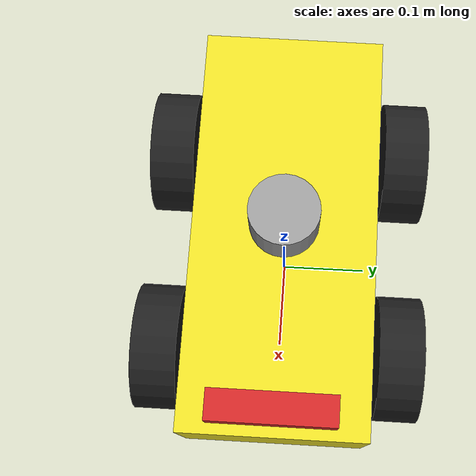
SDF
<?xml version="1.0"?>
<sdf version='1.7'>
  <model name='4WD_robot'>
    <link name="base_footprint"></link>

    <link name="base_link">
      <pose relative_to='base_footprint'>0 0 0.1195 0 0 0</pose>
      <visual name="base_link_of_robot">
        <pose>0 0 0 0 0 0</pose>
        <geometry>
          <box>
            <size>0.445 0.2 0.129</size>
          </box>
        </geometry>
        <material>
          <script>
            <name>Gazebo/Yellow</name>
            <uri>file://media/materials/scripts/gazebo.material</uri>
          </script>
        </material>
      </visual>
      <collision name="base_link_of_robot_collision">
        <pose>0 0 0 0 0 0</pose>
        <geometry>
          <box>
            <size>0.445 0.2 0.129</size>
          </box>
        </geometry>
      </collision>
      <inertial>
        <pose>0 0 0 0 0 0</pose>
        <mass>12</mass>
        <inertia>
          <ixx>0.0566</ixx>
          <ixy>0.0</ixy>
          <ixz>0.0</ixz>
          <iyy>0.2147</iyy>
          <iyz>0.0</iyz>
          <izz>0.238</izz>
        </inertia>
      </inertial>
    </link>
    <joint name="base_to_footprint" type="fixed">
      <parent>base_footprint</parent>
      <child>base_link</child>
      <pose relative_to='base_footprint'/>
    </joint>

    <link name="front_left_wheel_link">
      <pose relative_to='base_link'>0.120 0.1355 -0.04788 0 0 0</pose>
      <visual name="front_left_wheel_link_of_robot">
        <pose>0 0 0 1.5708 0 0</pose>
        <geometry>
          <cylinder>
            <radius>0.07162</radius>
            <length>0.05</length>
          </cylinder>
        </geometry>
        <material>
          <script>
            <name>Gazebo/Black</name>
            <uri>file://media/materials/scripts/gazebo.material</uri>
          </script>
        </material>
      </visual>
      <collision name="front_left_wheel_link_of_robot_collision">
        <pose>0 0 0 1.5708 0 0</pose>
        <geometry>
          <cylinder>
            <radius>0.07162</radius>
            <length>0.05</length>
          </cylinder>
        </geometry>
      </collision>
      <inertial>
        <pose>0 0 0 0 0 0</pose>
        <mass>0.5</mass>
        <inertia>
          <ixx>0.00103</ixx>
          <ixy>0.0</ixy>
          <ixz>0.0</ixz>
          <iyy>0.00103</iyy>
          <iyz>0.0</iyz>
          <izz>0.00103</izz>
        </inertia>
      </inertial>
    </link>
    <joint name="front_left_wheel_joint" type="revolute">
      <axis>
        <xyz>0 1 0</xyz>
        <limit>
          <lower>-1.79769e+308</lower>    <!--negative infinity-->
          <upper>1.79769e+308</upper>     <!--positive infinity-->
        </limit>
      </axis>
      <parent>base_link</parent>
      <child>front_left_wheel_link</child>
      <pose relative_to='front_left_wheel_link'/>
    </joint>

    <link name="front_right_wheel_link">
      <pose relative_to='base_link'>0.120 -0.1355 -0.04788 0 0 0</pose>
      <visual name="front_right_wheel_link_of_robot">
        <pose>0 0 0 1.5708 0 0</pose>
        <geometry>
          <cylinder>
            <radius>0.07162</radius>
            <length>0.05</length>
          </cylinder>
        </geometry>
        <material>
          <script>
            <name>Gazebo/Black</name>
            <uri>file://media/materials/scripts/gazebo.material</uri>
          </script>
        </material>
      </visual>
      <collision name="front_right_wheel_link_of_robot_collision">
        <pose>0 0 0 1.5708 0 0</pose>
        <geometry>
          <cylinder>
            <radius>0.07162</radius>
            <length>0.05</length>
          </cylinder>
        </geometry>
      </collision>
      <inertial>
        <pose>0 0 0 0 0 0</pose>
        <mass>0.5</mass>
        <inertia>
          <ixx>0.00103</ixx>
          <ixy>0.0</ixy>
          <ixz>0.0</ixz>
          <iyy>0.00103</iyy>
          <iyz>0.0</iyz>
          <izz>0.00103</izz>
        </inertia>
      </inertial>
    </link>
    <joint name="front_right_wheel_joint" type="revolute">
      <axis>
        <xyz>0 1 0</xyz>
        <limit>
          <lower>-1.79769e+308</lower>    <!--negative infinity-->
          <upper>1.79769e+308</upper>     <!--positive infinity-->
        </limit>
      </axis>
      <parent>base_link</parent>
      <child>front_right_wheel_link</child>
      <pose relative_to='front_right_wheel_link'/>
    </joint>

    <link name="rear_left_wheel_link">
      <pose relative_to='base_link'>-0.120 0.1355 -0.04788 0 0 0</pose>
      <visual name="rear_left_wheel_link_of_robot">
        <pose>0 0 0 1.5708 0 0</pose>
        <geometry>
          <cylinder>
            <radius>0.07162</radius>
            <length>0.05</length>
          </cylinder>
        </geometry>
        <material>
          <script>
            <name>Gazebo/Black</name>
            <uri>file://media/materials/scripts/gazebo.material</uri>
          </script>
        </material>
      </visual>
      <collision name="rear_left_wheel_link_of_robot_collision">
        <pose>0 0 0 1.5708 0 0</pose>
        <geometry>
          <cylinder>
            <radius>0.07162</radius>
            <length>0.05</length>
          </cylinder>
        </geometry>
      </collision>
      <inertial>
        <pose>0 0 0 0 0 0</pose>
        <mass>0.5</mass>
        <inertia>
          <ixx>0.00103</ixx>
          <ixy>0.0</ixy>
          <ixz>0.0</ixz>
          <iyy>0.00103</iyy>
          <iyz>0.0</iyz>
          <izz>0.00103</izz>
        </inertia>
      </inertial>
    </link>
    <joint name="rear_left_wheel_joint" type="revolute">
      <axis>
        <xyz>0 1 0</xyz>
        <limit>
          <lower>-1.79769e+308</lower>    <!--negative infinity-->
          <upper>1.79769e+308</upper>     <!--positive infinity-->
        </limit>
      </axis>
      <parent>base_link</parent>
      <child>rear_left_wheel_link</child>
      <pose relative_to='rear_left_wheel_link'/>
    </joint>

    <link name="rear_right_wheel_link">
      <pose relative_to='base_link'>-0.120 -0.1355 -0.04788 0 0 0</pose>
      <visual name="rear_right_wheel_link_of_robot">
        <pose>0 0 0 1.5708 0 0</pose>
        <geometry>
          <cylinder>
            <radius>0.07162</radius>
            <length>0.05</length>
          </cylinder>
        </geometry>
        <material>
          <script>
            <name>Gazebo/Black</name>
            <uri>file://media/materials/scripts/gazebo.material</uri>
          </script>
        </material>
      </visual>
      <collision name="rear_right_wheel_link_of_robot_collision">
        <pose>0 0 0 1.5708 0 0</pose>
        <geometry>
          <cylinder>
            <radius>0.07162</radius>
            <length>0.05</length>
          </cylinder>
        </geometry>
      </collision>
      <inertial>
        <pose>0 0 0 0 0 0</pose>
        <mass>0.5</mass>
        <inertia>
          <ixx>0.00103</ixx>
          <ixy>0.0</ixy>
          <ixz>0.0</ixz>
          <iyy>0.00103</iyy>
          <iyz>0.0</iyz>
          <izz>0.00103</izz>
        </inertia>
      </inertial>
    </link>
    <joint name="rear_right_wheel_joint" type="revolute">
      <axis>
        <xyz>0 1 0</xyz>
        <limit>
          <lower>-1.79769e+308</lower>    <!--negative infinity-->
          <upper>1.79769e+308</upper>     <!--positive infinity-->
        </limit>
      </axis>
      <parent>base_link</parent>
      <child>rear_right_wheel_link</child>
      <pose relative_to='rear_right_wheel_link'/>
    </joint>

    <plugin name="diff_drive" filename="libgazebo_ros_diff_drive.so">
      <num_wheel_pairs>2</num_wheel_pairs>
      <left_joint>front_left_wheel_joint</left_joint>
      <right_joint>front_right_wheel_joint</right_joint>
      <left_joint>rear_left_wheel_joint</left_joint>
      <right_joint>rear_right_wheel_joint</right_joint>
      <wheel_separation>0.271</wheel_separation>
      <wheel_separation>0.271</wheel_separation>
      <wheel_diameter>0.14324</wheel_diameter>
      <wheel_diameter>0.14324</wheel_diameter>
      <update_rate>50</update_rate>
      <max_wheel_acceleration>1.0</max_wheel_acceleration>
      <robot_base_frame>base_footprint</robot_base_frame>
      <publish_odom>true</publish_odom>
      <publish_odom_tf>true</publish_odom_tf>
      <publish_wheel_tf>true</publish_wheel_tf>
      <odometry_frame>odom</odometry_frame>
    </plugin>

    <frame name="laser_scan" attached_to='base_link'>
      <pose>0 0 0.129 0 0 0</pose>
    </frame>

    <link name="laser">
      <pose relative_to='laser_scan'/>
      <visual name="laser_link_of_robot">
        <pose>0 0 -0.025 0 0 0</pose>
        <geometry>
          <cylinder>
            <radius>0.0375</radius>
            <length>0.05</length>
          </cylinder>
        </geometry>
        <material>
          <script>
            <name>Gazebo/Grey</name>
            <uri>file://media/materials/scripts/gazebo.material</uri>
          </script>
        </material>
      </visual>
      <collision name="laser_link_of_robot_collision">
        <pose>0 0 -0.025 0 0 0</pose>
        <geometry>
          <cylinder>
            <radius>0.0375</radius>
            <length>0.05</length>
          </cylinder>
        </geometry>
      </collision>
      <inertial>
        <pose>0 0 0 0 0 0</pose>
        <mass>0.1</mass>
        <inertia>
          <ixx>0.000056</ixx>
          <ixy>0.0</ixy>
          <ixz>0.0</ixz>
          <iyy>0.000056</iyy>
          <iyz>0.0</iyz>
          <izz>0.000056</izz>
        </inertia>
      </inertial>
      <sensor type="ray" name="laser_lidar">
        <always_on>1</always_on>
        <update_rate>15</update_rate>
        <visualize>true</visualize>
        <ray>
          <scan>
            <horizontal>
              <samples>540</samples>
              <resolution>1</resolution>
              <min_angle>-1.5708</min_angle>
              <max_angle>1.5708</max_angle>
            </horizontal>
          </scan>
          <range>
            <min>0.08</min>
            <max>10.0</max>
            <resolution>0.01</resolution>
          </range>
        </ray>
        <plugin name="laser" filename="libgazebo_ros_ray_sensor.so">
          <ros>
            <remapping>~/out:=scan</remapping>
          </ros>
          <output_type>sensor_msgs/LaserScan</output_type>
        </plugin>
      </sensor>
    </link>
    <joint name="laser_to_base_link" type="fixed">
      <parent>base_link</parent>
      <child>laser</child>
    </joint>

    <link name="imu_link">
      <pose relative_to="base_link">0 0 0 0 0 0</pose>
      <gravity>true</gravity>
      <sensor name="imu_sensor" type="imu">
        <always_on>true</always_on>
        <update_rate>100</update_rate>
        <visualize>true</visualize>
        <topic>imu/data</topic>
        <plugin filename="libgazebo_ros_imu_sensor.so" name="imu_plugin">
            <ros>
              <remapping>~/out:=imu/data</remapping>
            </ros>
            <topicName>imu/data</topicName>
            <bodyName>imu_link</bodyName>
            <gaussianNoise>0.0</gaussianNoise>
            <xyzOffset>0 0 0</xyzOffset>
            <rpyOffset>0 0 0</rpyOffset>
            <frameName>imu_link</frameName>
            <initialOrientationAsReference>false</initialOrientationAsReference>
        </plugin>
        <pose>0 0 0 0 0 0</pose>
      </sensor>
    </link>
    <joint name="imu_to_base_link" type="fixed">
      <parent>base_link</parent>
      <child>imu_link</child>
      <pose relative_to="imu_link"/>
    </joint>

    <link name="gps_link">
      <pose relative_to="base_link">0 0 0 0 0 0</pose>
      <sensor name="tb3_gps" type="gps">
        <always_on>true</always_on>
        <update_rate>100</update_rate>
        <pose>0 0 0 0 0 0</pose>
        <gps>
          <position_sensing>
            <horizontal>
              <noise type="gaussian">
                <mean>0.0</mean>
                <stddev>0.01</stddev>
              </noise>
            </horizontal>
            <vertical>
              <noise type="gaussian">
                <mean>0.0</mean>
                <stddev>0.01</stddev>
              </noise>
            </vertical>
          </position_sensing>
        </gps>
        <plugin name="my_gps_plugin" filename="libgazebo_ros_gps_sensor.so">
          <frame_name>gps_link</frame_name>
          <ros>
            <remapping>~/out:=/gps/fix</remapping>
          </ros>
        </plugin>
      </sensor>
    </link>
    <joint name="gps_to_base_link" type="fixed">
      <parent>base_link</parent>
      <child>gps_link</child>
      <pose relative_to="gps_link"/>
    </joint>

    <link name="camera_link">
      <pose relative_to="base_link">0.20 0 0.15 0 0 0</pose>
      <visual name="camera_link_of_robot">
        <pose>0 0 0 0 0 0</pose>
        <geometry>
          <box>
            <size>0.030 0.124 0.030</size>
          </box>
        </geometry>
        <material>
          <script>
            <name>Gazebo/Red</name>
            <uri>file://media/materials/scripts/gazebo.material</uri>
          </script>
        </material>
      </visual>
      <collision name="camera_link_of_robot_collision">
        <pose>0 0 0 0 0 0</pose>
        <geometry>
          <box>
            <size>0.030 0.124 0.030</size>
          </box>
        </geometry>
      </collision>
      <inertial>
        <pose>0 0 0 0 0 0</pose>
        <mass>0.135</mass>
        <inertia>
          <ixx>0.00018</ixx>
          <ixy>0.0</ixy>
          <ixz>0.0</ixz>
          <iyy>0.00002</iyy>
          <iyz>0.0</iyz>
          <izz>0.00018</izz>
        </inertia>
      </inertial>
    </link>
    <joint name="camera_to_base_link" type="fixed">
      <parent>base_link</parent>
      <child>camera_link</child>
      <pose relative_to="camera_link"/>
    </joint>

    <link name="camera_depth_link">
      <pose relative_to='camera_link'>0 0 0 -1.57 0 -1.57</pose>
      <sensor name="camera" type="depth">
        <pose> 0 0 0 0 0 0 </pose>
        <visualization>true</visualization>
        <update_rate>50.0</update_rate>
        <camera>
          <horizontal_fov>1.50098</horizontal_fov>
          <image>
            <width>640</width>
            <height>480</height>
            <format>R8G8B8</format>
          </image>
          <clip>
            <near>0.05</near>
            <far>8.0</far>
          </clip>
        </camera>
        <plugin name="camera_controller" filename="libgazebo_ros_camera.so">
          <frame_name>camera_depth_link</frame_name>
          <min_depth>0.1</min_depth>
          <max_depth>100.0</max_depth>
        </plugin>
      </sensor>
    </link>
    <joint name="camera_depth_joint" type="fixed">
      <pose relative_to='camera_depth_link'/>
      <parent>camera_link</parent>
      <child>camera_depth_link</child>
    </joint>

  </model>
</sdf>
